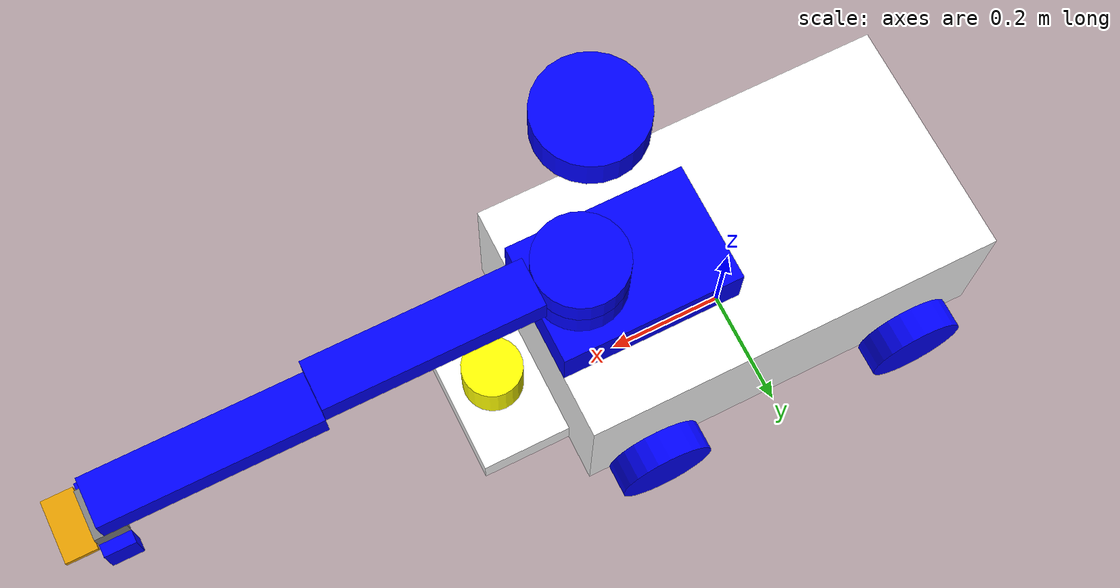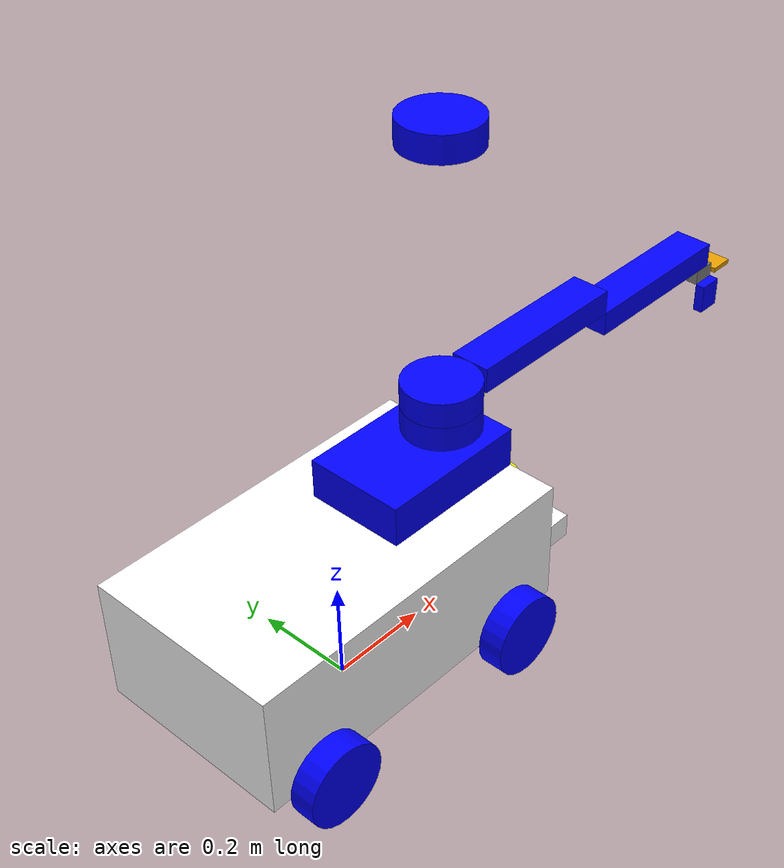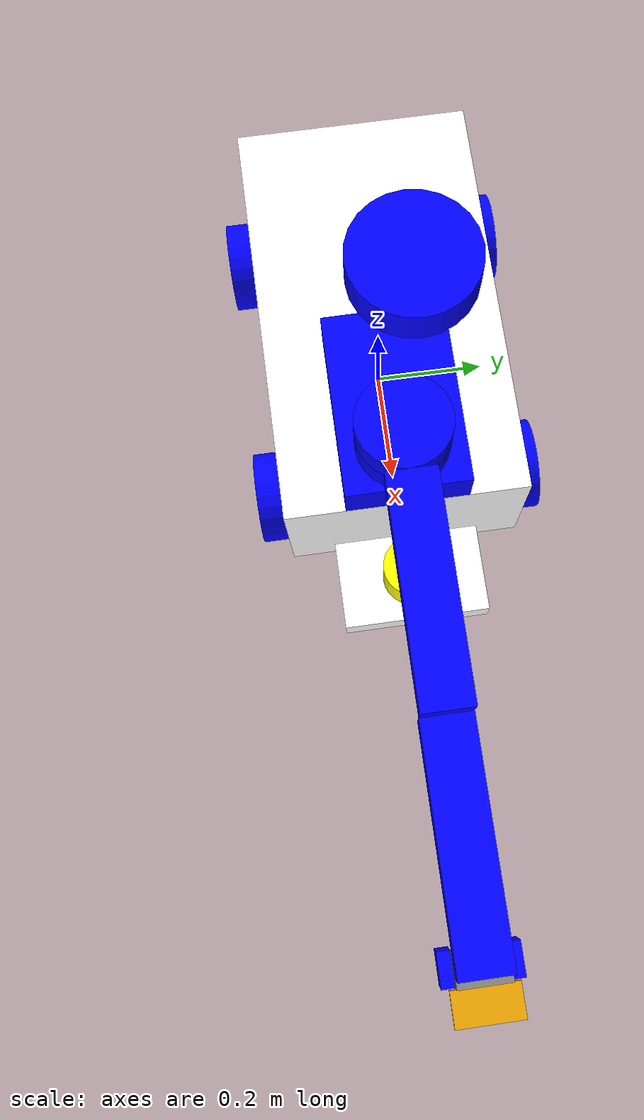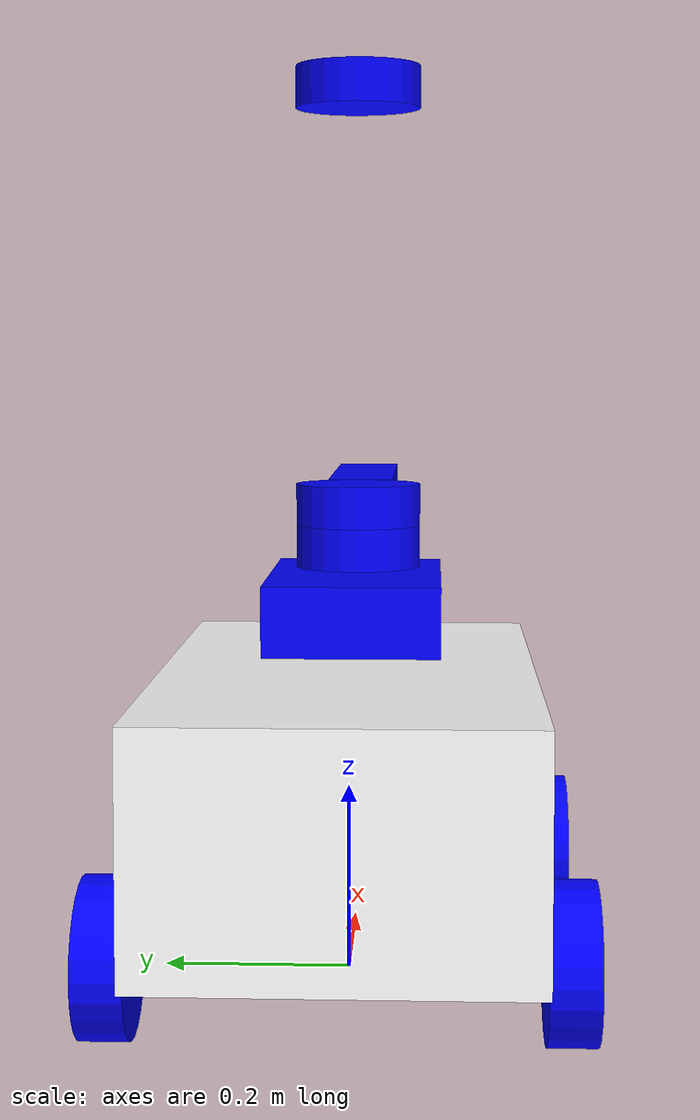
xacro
<?xml version="1.0"?>
<robot name="orion" xmlns:xacro="http://www.ros.org/wiki/xacro">
    <gazebo>
        <plugin
            filename="gz-sim-sensors-system"
            name="gz::sim::systems::Sensors">
            <render_engine>ogre2</render_engine>
        </plugin>
    </gazebo>

    <xacro:include filename="common_properties.xacro"/>
    <xacro:include filename="orion_base.xacro"/>
    <xacro:include filename="orion_manipulator_scara.xacro"/>
    <joint name="base_scara_joint" type="fixed">
        <parent link="base_link"/>
        <child link="base_scara_link"/>
        <origin xyz="${(base_length/2) - 0.15} 0 ${base_height}" rpy="0 0 0"/>
    </joint>
    <xacro:include filename="orion_manipulator_scara_gazebo.xacro"/>
    <xacro:include filename="orion_base_gazebo.xacro"/>
    <xacro:include filename="sensors/camera.xacro"/>
    <xacro:include filename="sensors/imus.xacro"/>
    <xacro:include filename="sensors/lidar.xacro"/>
    <xacro:include filename="sensors/ultrassonic.xacro"/>
    <xacro:include filename="world_sensor_plugins.xacro"/>
</robot>

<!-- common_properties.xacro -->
<robot xmlns:xacro="http://www.ros.org/wiki/xacro">

    <material name="red">
        <color rgba="1 0 0 1"/>
    </material>

    <material name="white">
        <color rgba="1 1 1 1"/>
    </material>

    <material name="blue">
        <color rgba="0 0 1 1"/>
    </material>

    <material name="yellow">
        <color rgba="1 1 0 1"/>
    </material>

    <material name="grey">
        <color rgba="0.5 0.5 0.5 1"/>
    </material>

    <xacro:macro name="box_inertia" params="m x y z o_xyz o_rpy">
        <inertial>
            <mass value="${m}"/>
            <origin xyz="${o_xyz}" rpy="${o_rpy}"/>
            <inertia ixx="${(m/12) * (y*y + z*z)}" ixy="0" ixz="0"
                     iyy="${(m/12) * (x*x + z*z)}" iyz="0"
                     izz="${(m/12) * (x*x + y*y)}"/>
        </inertial>
    </xacro:macro>

    <xacro:macro name="cylinder_inertia" params="m r h o_xyz o_rpy">
        <inertial>
            <mass value="${m}"/>
            <origin xyz="${o_xyz}" rpy="${o_rpy}"/>
            <inertia ixx="${(m/12) * (3*r*r + h*h)}" ixy="0" ixz="0"
                     iyy="${(m/12) * (3*r*r + h*h)}" iyz="0"
                     izz="${(m/2) * (r*r)}"/>
        </inertial>
    </xacro:macro>

    <xacro:macro name="sphere_inertia" params="m r o_xyz o_rpy">
        <inertial>
            <mass value="${m}"/>
            <origin xyz="${o_xyz}" rpy="${o_rpy}"/>
            <inertia ixx="${(2.0/5.0) * m*r*r}" ixy="0" ixz="0"
                     iyy="${(2.0/5.0) * m*r*r}" iyz="0"
                     izz="${(2.0/5.0) * m*r*r}"/>
        </inertial>
    </xacro:macro>

</robot>

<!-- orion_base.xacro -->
<robot xmlns:xacro="http://www.ros.org/wiki/xacro">

    <xacro:property name="base_length" value="0.7"/>
    <xacro:property name="base_width" value ="0.4"/>
    <xacro:property name="base_height" value="0.25"/>
    <xacro:property name="wheel_radius" value="0.08"/>
    <xacro:property name="wheel_length" value="0.05"/>
    <xacro:property name="support_length" value="0.15"/>
    <xacro:property name="support_width" value="0.25"/>
    <xacro:property name="support_height" value="0.05"/>
    <xacro:property name="lidar_radius" value="0.05"/>
    <xacro:property name="lidar_length" value="0.08"/>

    <xacro:property name="base_mass" value="10.0"/>
    <xacro:property name="wheel_mass" value="5.0"/>
    <xacro:property name="support_lidar_mass" value="0.3"/>

    <xacro:macro name="wheel_link" params="prefix">
        <link name="${prefix}_wheel_link">
            <visual>
                <geometry>
                    <cylinder radius="${wheel_radius}" length="${wheel_length}"/>
                </geometry>
                <origin xyz="0 0 0" rpy="${pi/2.0} 0 0"/>
                <material name="blue"/>
            </visual>
            <collision>
                <geometry>
                    <sphere radius="${wheel_radius}"/>
                </geometry>
                <origin xyz="0 0 0" rpy="0 0 0"/>
            </collision>
            <xacro:cylinder_inertia m="${wheel_mass}" r="${wheel_radius}" h="${wheel_length}"
                                    o_xyz="0 0 0" o_rpy="${pi / 2.0} 0 0"/>
        </link>
    </xacro:macro>

    <link name="base_footprint"/>

    <link name="base_link">
        <visual>
            <geometry>
                <box size="${base_length} ${base_width} ${base_height}"/>
            </geometry>
            <material name="white"/>
            <origin xyz="0 0 ${base_height/2}" rpy="0 0 0"/>
        </visual>
        <collision>
            <geometry>
                <box size="${base_length} ${base_width} ${base_height}"/>
            </geometry>
            <origin xyz="0 0 ${base_height/2.0}" rpy="0 0 0"/>
        </collision>
        <xacro:box_inertia m="${base_mass}" x="${base_length}" y="${base_width}" z="${base_height}"
                           o_xyz="0 0 ${base_height/2.0}" o_rpy="0 0 0"/>
    </link>

    <xacro:wheel_link prefix="rear_left"/>
    <xacro:wheel_link prefix="rear_right"/>
    <xacro:wheel_link prefix="front_left"/>
    <xacro:wheel_link prefix="front_right"/>

    <link name="support_link">
        <visual>
            <geometry>
                <box size="${support_length} ${support_width} ${support_height}"/>
            </geometry>
            <material name="white"/>
            <origin xyz="${support_length/2} 0 0" rpy="0 0 0"/>
        </visual>
        <collision>
            <geometry>
                <box size="${support_length} ${support_width} ${support_height}"/>
            </geometry>
            <origin xyz="${support_length/2} 0 0" rpy="0 0 0"/>
        </collision>
        <xacro:box_inertia m="${support_lidar_mass}" x="${support_length}" y="${support_width}" z="${support_height}"
                           o_xyz="${support_length/2} 0 0" o_rpy="0 0 0"/>
    </link>

    <joint name="base_joint" type="fixed">
        <parent link="base_footprint"/>
        <child link="base_link"/>
        <origin xyz="0 0 ${wheel_radius}" rpy="0 0 0"/>
    </joint>

    <joint name="base_rear_left_wheel" type="continuous">
        <parent link="base_link"/>
        <child link="rear_left_wheel_link"/>
        <origin xyz="${-base_length/3} ${(base_width/2)+(wheel_length/2)} 0" rpy="0 0 0"/>
        <axis xyz="0 1 0"/>
    </joint>

    <joint name="base_rear_right_wheel" type="continuous">
        <parent link="base_link"/>
        <child link="rear_right_wheel_link"/>
        <origin xyz="${-base_length/3} ${(-base_width/2)-(wheel_length/2)} 0" rpy="0 0 0"/>
        <axis xyz="0 1 0"/>
    </joint>

    <joint name="base_front_left_wheel" type="continuous">
        <parent link="base_link"/>
        <child link="front_left_wheel_link"/>
        <origin xyz="${base_length/3} ${(base_width/2)+(wheel_length/2)} 0" rpy="0 0 0"/>
        <axis xyz="0 1 0"/>
    </joint>

    <joint name="base_front_right_wheel" type="continuous">
        <parent link="base_link"/>
        <child link="front_right_wheel_link"/>
        <origin xyz="${base_length/3} ${(-base_width/2)-(wheel_length/2)} 0" rpy="0 0 0"/>
        <axis xyz="0 1 0"/>
    </joint>

    <joint name="base_support" type="fixed">
        <parent link="base_link"/>
        <child link="support_link"/>
        <origin xyz="${(base_length/2)} 0 ${support_height/2}" rpy="0 0 0"/>
    </joint>

</robot>

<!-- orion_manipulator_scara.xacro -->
<robot xmlns:xacro="http://www.ros.org/wiki/xacro">

    <xacro:property name="base_scara_length" value="0.3"/>
    <xacro:property name="base_scara_width" value ="0.2"/>
    <xacro:property name="base_scara_height" value="0.08"/>
    <xacro:property name="scara_support_radius" value="0.075"/>
    <xacro:property name="scara_support_length" value="0.05"/>
    <xacro:property name="arm_length" value="0.35"/>
    <xacro:property name="arm_width" value ="0.08"/>
    <xacro:property name="arm_height" value="0.05"/>
    <xacro:property name="base_gripper_length" value="0.05"/>
    <xacro:property name="base_gripper_width" value ="0.08"/>
    <xacro:property name="base_gripper_height" value="0.03"/>
    <xacro:property name="gripper_length" value="0.05"/>
    <xacro:property name="gripper_width" value ="0.02"/>
    <xacro:property name="gripper_height" value="0.06"/>

    <xacro:property name="base_scara_mass" value="3.0"/>
    <xacro:property name="scara_support_mass" value="1.0"/>
    <xacro:property name="arm_mass" value="1.0"/>
    <xacro:property name="base_gripper_mass" value="0.2"/>
    <xacro:property name="gripper_mass" value="0.1"/>

    <xacro:macro name="support_link" params="prefix z">
        <link name="${prefix}_scara_link">
            <visual>
                <geometry>
                    <cylinder radius="${scara_support_radius}" length="${scara_support_length}"/>
                </geometry>
                <origin xyz="0 0 ${z}" rpy="0 0 0"/>
                <material name="blue"/>
            </visual>
            <collision>
                <geometry>
                    <cylinder radius="${scara_support_radius}" length="${scara_support_length}"/>
                </geometry>
                <origin xyz="0 0 ${z}" rpy="0 0 0"/>
            </collision>
            <xacro:cylinder_inertia m="${scara_support_mass}" r="${scara_support_radius}" h="${scara_support_length}"
                                    o_xyz="0 0 ${z}" o_rpy="0 0 0"/>
        </link>
    </xacro:macro>

    <xacro:macro name="arm_link" params="prefix">
        <link name="arm_${prefix}_link">
            <visual>
                <geometry>
                    <box size="${arm_length} ${arm_width} ${arm_height}"/>
                </geometry>
                <origin xyz="0.175 0 0" rpy="0 0 0"/>
                <material name="blue"/>
            </visual>
            <collision>
                <geometry>
                    <box size="${arm_length} ${arm_width} ${arm_height}"/>
                </geometry>
                <origin xyz="0.175 0 0" rpy="0 0 0"/>
            </collision>
            <xacro:box_inertia m="${arm_mass}" x="${arm_length}" y="${arm_width}" z="${arm_height}"
                           o_xyz="0.175 0 0" o_rpy="0 0 0"/>
        </link>
    </xacro:macro>

    <xacro:macro name="gripper_link" params="prefix">
        <link name="${prefix}_gripper_link">
            <visual>
                <geometry>
                    <box size="${gripper_length} ${gripper_width} ${gripper_height}"/>
                </geometry>
                <origin xyz="0 0 0" rpy="0 0 0"/>
                <material name="blue"/>
            </visual>
            <collision>
                <geometry>
                    <box size="${gripper_length} ${gripper_width} ${gripper_height}"/>
                </geometry>
                <origin xyz="0 0 0" rpy="0 0 0"/>
            </collision>
            <xacro:box_inertia m="${gripper_mass}" x="${gripper_length}" y="${gripper_width}" z="${gripper_height}"
                           o_xyz="0 0 0" o_rpy="0 0 0"/>
        </link>
    </xacro:macro>

    <link name="base_scara_link">
        <visual>
            <geometry>
                <box size="${base_scara_length} ${base_scara_width} ${base_scara_height}"/>
            </geometry>
            <origin xyz="0 0 0.04" rpy="0 0 0"/>
            <material name="blue"/>
        </visual>
        <collision>
                <geometry>
                    <box size="${base_scara_length} ${base_scara_width} ${base_scara_height}"/>
                </geometry>
                <origin xyz="0 0 0.04" rpy="0 0 0"/>
            </collision>
            <xacro:box_inertia m="${base_scara_mass}" x="${base_scara_length}" y="${base_scara_width}" z="${base_scara_height}"
                           o_xyz="0 0 0.04" o_rpy="0 0 0"/>
    </link>

    <xacro:support_link prefix="first_support" z="0.025"/>
    <xacro:support_link prefix="second_support" z="0.025"/>
    <xacro:support_link prefix="movable" z="0"/>

    <xacro:arm_link prefix="1"/>
    <xacro:arm_link prefix="2"/>

    <link name="base_gripper_link">
        <visual>
            <geometry>
                <box size="${base_gripper_length} ${base_gripper_width} ${base_gripper_height}"/>
            </geometry>
            <origin xyz="0 0 0" rpy="0 0 0"/>
            <material name="grey"/>
        </visual>
        <collision>
                <geometry>
                    <box size="${base_gripper_length} ${base_gripper_width} ${base_gripper_height}"/>
                </geometry>
                <origin xyz="0 0 0" rpy="0 0 0"/>
            </collision>
            <xacro:box_inertia m="${base_gripper_mass}" x="${base_gripper_length}" y="${base_gripper_width}" z="${base_gripper_height}"
                           o_xyz="0 0 0" o_rpy="0 0 0"/>
    </link>

    <xacro:gripper_link prefix="left"/>
    <xacro:gripper_link prefix="right"/>

------------------------------------------------------------

    <joint name="scara_base_first_support_joint" type="revolute">
        <parent link="base_scara_link"/>
        <child link="first_support_scara_link"/>
        <origin xyz="0.075 0 0.08" rpy="0 0 0"/>
        <axis xyz="0 0 1"/>

        <limit lower="-3.14" upper="3.14" effort="500.0" velocity="1.0"/>
        <dynamics friction="20" damping="5" />

    </joint>

    <joint name="support_scara_joint" type="fixed">
        <parent link="first_support_scara_link"/>
        <child link="second_support_scara_link"/>
        <origin xyz="0 0 0.55" rpy="0 0 0"/>
    </joint>

    <joint name="first_support_movable_scara_joint" type="prismatic">
        <parent link="first_support_scara_link"/>
        <child link="movable_scara_link"/>
        <origin xyz="0 0 0.075" rpy="0 0 0"/>
        <axis xyz="0 0 1"/>
        <limit lower="0" upper="0.45" effort="300.0" velocity="3.0"/>
        <dynamics friction="20" damping="5"/>
    </joint>

    <joint name="movable_scara_arm_1_joint" type="fixed">
        <parent link="movable_scara_link"/>
        <child link="arm_1_link"/>
        <origin xyz="0.075 0 0" rpy="0 0 0"/>
    </joint>

    <joint name="arm_joint" type="revolute">
        <parent link="arm_1_link"/>
        <child link="arm_2_link"/>
        <origin xyz="0.35 0 -0.05" rpy="0 0 0"/>
        <axis xyz="0 0 1"/>
        <limit lower="-3.14" upper="3.14" effort="500.0" velocity="3.0"/>
        <dynamics friction="15" damping="5" />
    </joint>

    <joint name="arm2_base_gripper_joint" type="revolute">
        <parent link="arm_2_link"/>
        <child link="base_gripper_link"/>
        <origin xyz="0.34 0 -0.040" rpy="0 0 0"/>
        <axis xyz="0 0 1"/>
        <limit lower="-3.14" upper="3.14" effort="80.0" velocity="1.0"/>
        <dynamics friction="5" damping="0.5" />
    </joint>

    <joint name="base_right_gripper_joint" type="prismatic">
        <parent link="base_gripper_link"/>
        <child link="right_gripper_link"/>
        <origin xyz="0 -0.05 -0.045" rpy="0 0 0"/>
        <axis xyz="0 1 0"/>
        <limit lower="-0.02" upper="0.02" effort="100.0" velocity="1.0"/>
        <dynamics friction="2.5" damping="0.8"/>
    </joint>

    <joint name="base_left_gripper_joint" type="prismatic">
        <parent link="base_gripper_link"/>
        <child link="left_gripper_link"/>
        <origin xyz="0 0.05 -0.045" rpy="0 0 0"/>
        <axis xyz="0 1 0"/>
        <limit lower="-0.02" upper="0.02" effort="100.0" velocity="1.0"/>
        <dynamics friction="2.5" damping="0.8"/>
    </joint>

</robot>

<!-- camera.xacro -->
<robot xmlns:xacro="http://www.ros.org/wiki/xacro">

    <xacro:property name="camera_length" value="0.01"/>
    <xacro:property name="camera_width" value="0.1"/>
    <xacro:property name="camera_height" value="0.05"/>

    <xacro:macro name="camera_module" params="
        parent
        name:=camera
        length:=0.02
        width:=0.04
        height:=0.04
        mass:=0.1
        origin_xyz:='0.1 0 0'
        origin_rpy:='0 ${pi/2} 0'
        hfov:=1.3962634
        img_width:=640
        img_height:=480
        clip_near:=0.1
        clip_far:=15
        noise_stddev:=0.007
        update_rate:=20
        topic:=camera/image_raw
        info_topic:=camera/camera_info
    ">

        <link name="${name}_link">
            <visual>
                <geometry>
                    <box size="${length} ${width} ${height}"/>
                </geometry>
            </visual>
            <collision>
                <geometry>
                    <box size="${length} ${width} ${height}"/>
                </geometry>
            </collision>
            <xacro:box_inertia m="${mass}" x="${length}" y="${width}" z="${height}"
                               o_xyz="0 0 0" o_rpy="0 0 0"/>
        </link>

        <joint name="${parent}_${name}_joint" type="fixed">
            <parent link="${parent}_link"/>
            <child link="${name}_link"/>
            <origin xyz="${origin_xyz}" rpy="${origin_rpy}"/>
        </joint>

        <link name="${name}_link_optical"/>

        <joint name="${name}_optical_joint" type="fixed">
            <parent link="${name}_link"/>
            <child link="${name}_link_optical"/>
            <origin xyz="0 0 0" rpy="${-pi/2} 0 ${-pi/2}"/>
        </joint>

        <gazebo reference="${name}_link">
            <sensor name="${name}_sensor" type="camera">
                <camera>
                    <horizontal_fov>${hfov}</horizontal_fov>
                    <image>
                        <width>${img_width}</width>
                        <height>${img_height}</height>
                        <format>R8G8B8</format>
                    </image>
                    <clip>
                        <near>${clip_near}</near>
                        <far>${clip_far}</far>
                    </clip>
                    <noise>
                        <type>gaussian</type>
                        <mean>0.0</mean>
                        <stddev>${noise_stddev}</stddev>
                    </noise>
                    <optical_frame_id>${name}_link_optical</optical_frame_id>
                    <camera_info_topic>${info_topic}</camera_info_topic>
                </camera>
                <always_on>1</always_on>
                <update_rate>${update_rate}</update_rate>
                <visualize>true</visualize>
                <topic>${topic}</topic>
            </sensor>
        </gazebo>

    </xacro:macro>

    <xacro:camera_module parent="base_gripper"
                     length="0.01"
                     width="0.1"
                     height="0.05"
                     origin_xyz="${(base_gripper_length+0.05)/2.0} 0 0"
                     origin_rpy="0 ${pi/2} 0"/>

</robot>

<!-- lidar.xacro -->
<robot xmlns:xacro="http://www.ros.org/wiki/xacro">

    <xacro:macro name="lidar_module" params="
        parent
        name:=laser
        radius:=0.05
        length:=0.04
        mass:=0.2
        origin_xyz:='0 0 0'
        origin_rpy:='0 0 0'
        samples:=360
        resolution:=1
        min_angle:=-3.14159
        max_angle:=3.14159
        range_min:=0.15
        range_max:=10.0
        range_resolution:=0.01
        noise_stddev:=0.01
        update_rate:=10
        topic:=scan
    ">

        <link name="${name}_frame">
            <visual>
                <geometry>
                    <cylinder radius="${radius}" length="${length}"/>
                </geometry>
                <material name="yellow"/>
                <origin xyz="0 0 0" rpy="0 0 0"/>
            </visual>
            <collision>
                <geometry>
                    <cylinder radius="${radius}" length="${length}"/>
                </geometry>
                <origin xyz="0 0 0" rpy="0 0 0"/>
            </collision>
            <xacro:cylinder_inertia m="${mass}" r="${radius}" h="${length}"
                                    o_xyz="0 0 0" o_rpy="0 0 0"/>
        </link>

        <joint name="${name}_support" type="fixed">
            <parent link="${parent}"/>
            <child link="${name}_frame"/>
            <origin xyz="${origin_xyz}" rpy="${origin_rpy}"/>
        </joint>

        <gazebo reference="${name}_frame">
            <sensor name="${name}" type="gpu_lidar">
                <pose>0 0 0 0 0 0</pose>
                <always_on>true</always_on>
                <visualize>true</visualize>
                <update_rate>${update_rate}</update_rate>
                <topic>${topic}</topic>
                <gz_frame_id>${name}_frame</gz_frame_id>
                <lidar>
                    <scan>
                        <horizontal>
                            <samples>${samples}</samples>
                            <resolution>${resolution}</resolution>
                            <min_angle>${min_angle}</min_angle>
                            <max_angle>${max_angle}</max_angle>
                        </horizontal>
                    </scan>
                    <range>
                        <min>${range_min}</min>
                        <max>${range_max}</max>
                        <resolution>${range_resolution}</resolution>
                    </range>
                    <noise>
                        <type>gaussian</type>
                        <mean>0.0</mean>
                        <stddev>${noise_stddev}</stddev>
                    </noise>
                </lidar>
            </sensor>
        </gazebo>

    </xacro:macro>

    <xacro:lidar_module parent="support_link"
                    radius="${lidar_radius}"
                    length="${lidar_length}"
                    origin_xyz="${support_length/2} 0 ${(support_height/2)+(lidar_length/2)}"
                    origin_rpy="0 0 0"
                    min_angle="${-pi/2}"
                    max_angle="${pi/2}"/>
</robot>
